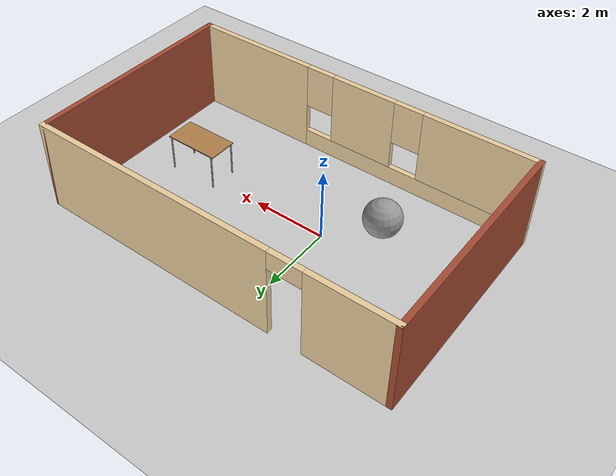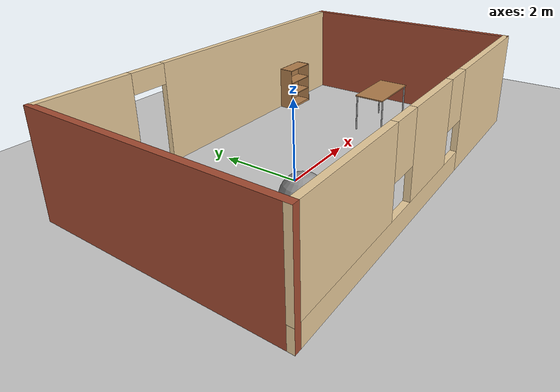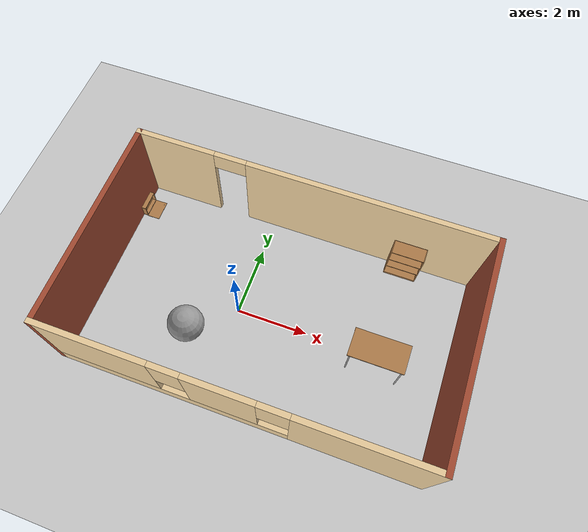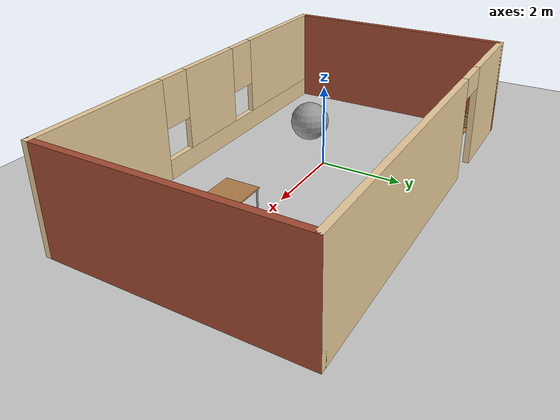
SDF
<sdf version="1.6">
 <world name="default">
  <light name="sun" type="directional">
   <pose>0 0 10 0 -0 0</pose>
   <diffuse>0.8 0.8 0.8 1</diffuse>
   <specular>0.2 0.2 0.2 1</specular>
   <attenuation>
    <range>1000</range>
    <constant>0.9</constant>
    <linear>0.01</linear>
    <quadratic>0.001</quadratic>
   </attenuation>
   <direction>-0.5 0.1 -0.9</direction>
  </light>
  <model name="ground_plane">
   <static>1</static>
   <link name="link">
    <collision name="collision">
     <geometry><plane><normal>0 0 1</normal><size>100 100</size></plane></geometry>
     <surface><friction><ode><mu>100</mu><mu2>50</mu2></ode></friction></surface>
    </collision>
    <visual name="visual">
     <cast_shadows>0</cast_shadows>
     <geometry><plane><normal>0 0 1</normal><size>100 100</size></plane></geometry>
     <material>
      <script><uri>file://media/materials/scripts/gazebo.material</uri><name>Gazebo/Grey</name></script>
     </material>
    </visual>
   </link>
  </model>
  <gravity>0 0 -9.8</gravity>
  <magnetic_field>6e-06 2.3e-05 -4.2e-05</magnetic_field>
  <atmosphere type="adiabatic"/>
  <physics name="default_physics" default="0" type="ode">
   <max_step_size>0.001</max_step_size>
   <real_time_factor>1</real_time_factor>
   <real_time_update_rate>1000</real_time_update_rate>
  </physics>
  <scene><ambient>0.4 0.4 0.4 1</ambient><background>0.7 0.7 0.7 1</background><shadows>1</shadows></scene>
  <spherical_coordinates>
   <surface_model>EARTH_WGS84</surface_model>
   <latitude_deg>0</latitude_deg>
   <longitude_deg>0</longitude_deg>
   <elevation>0</elevation>
   <heading_deg>0</heading_deg>
  </spherical_coordinates>
  <model name="Room">
   <pose>0.988 0.14043 0 0 -0 0</pose>
   <link name="Wall_1">
    <collision name="Wall_1_Collision">
     <geometry><box><size>6 0.15 2.5</size></box></geometry>
     <pose>0 0 1.25 0 -0 0</pose>
    </collision>
    <visual name="Wall_1_Visual">
     <pose>0 0 1.25 0 -0 0</pose>
     <geometry><box><size>6 0.15 2.5</size></box></geometry>
     <material>
      <script><uri>file://media/materials/scripts/gazebo.material</uri><name>Gazebo/Bricks</name></script>
      <ambient>1 1 1 1</ambient>
     </material>
     <meta><layer>0</layer></meta>
    </visual>
    <pose>-4.925 0 0 0 -0 1.5708</pose>
   </link>
   <link name="Wall_2">
    <pose>0 2.925 0 0 -0 0</pose>
    <visual name="Wall_2_Visual_0">
     <pose>-3.86575 0 1.25 0 -0 0</pose>
     <geometry><box><size>2.2685 0.15 2.5</size></box></geometry>
     <material>
      <script><uri>file://media/materials/scripts/gazebo.material</uri><name>Gazebo/Grey</name></script>
      <ambient>0.921569 0.807843 0.615686 1</ambient>
     </material>
     <meta><layer>0</layer></meta>
    </visual>
    <collision name="Wall_2_Collision_0">
     <geometry><box><size>2.2685 0.15 2.5</size></box></geometry>
     <pose>-3.86575 0 1.25 0 -0 0</pose>
    </collision>
    <visual name="Wall_2_Visual_1">
     <pose>1.58425 0 1.25 0 -0 0</pose>
     <geometry><box><size>6.8315 0.15 2.5</size></box></geometry>
     <material>
      <script><uri>file://media/materials/scripts/gazebo.material</uri><name>Gazebo/Grey</name></script>
      <ambient>0.921569 0.807843 0.615686 1</ambient>
     </material>
     <meta><layer>0</layer></meta>
    </visual>
    <collision name="Wall_2_Collision_1">
     <geometry><box><size>6.8315 0.15 2.5</size></box></geometry>
     <pose>1.58425 0 1.25 0 -0 0</pose>
    </collision>
    <visual name="Wall_2_Visual_2">
     <pose>-2.2815 0 2.25 0 -0 0</pose>
     <geometry><box><size>0.9 0.15 0.5</size></box></geometry>
     <material>
      <script><uri>file://media/materials/scripts/gazebo.material</uri><name>Gazebo/Grey</name></script>
      <ambient>0.921569 0.807843 0.615686 1</ambient>
     </material>
     <meta><layer>0</layer></meta>
    </visual>
    <collision name="Wall_2_Collision_2">
     <geometry><box><size>0.9 0.15 0.5</size></box></geometry>
     <pose>-2.2815 0 2.25 0 -0 0</pose>
    </collision>
   </link>
   <link name="Wall_3">
    <collision name="Wall_3_Collision">
     <geometry><box><size>6 0.15 2.5</size></box></geometry>
     <pose>0 0 1.25 0 -0 0</pose>
    </collision>
    <visual name="Wall_3_Visual">
     <pose>0 0 1.25 0 -0 0</pose>
     <geometry><box><size>6 0.15 2.5</size></box></geometry>
     <material>
      <script><uri>file://media/materials/scripts/gazebo.material</uri><name>Gazebo/Bricks</name></script>
      <ambient>1 1 1 1</ambient>
     </material>
     <meta><layer>0</layer></meta>
    </visual>
    <pose>4.925 0 0 0 0 -1.5708</pose>
   </link>
   <link name="Wall_4">
    <pose>0 -2.925 0 0 -0 3.14159</pose>
    <visual name="Wall_4_Visual_0">
     <pose>-3.23825 0 1.25 0 -0 0</pose>
     <geometry><box><size>3.5235 0.15 2.5</size></box></geometry>
     <material>
      <script><uri>file://media/materials/scripts/gazebo.material</uri><name>Gazebo/Grey</name></script>
      <ambient>0.921569 0.807843 0.615686 1</ambient>
     </material>
     <meta><layer>0</layer></meta>
    </visual>
    <collision name="Wall_4_Collision_0">
     <geometry><box><size>3.5235 0.15 2.5</size></box></geometry>
     <pose>-3.23825 0 1.25 0 -0 0</pose>
    </collision>
    <visual name="Wall_4_Visual_1">
     <pose>1.76175 0 0.25 0 -0 0</pose>
     <geometry><box><size>6.4765 0.15 0.5</size></box></geometry>
     <material>
      <script><uri>file://media/materials/scripts/gazebo.material</uri><name>Gazebo/Grey</name></script>
      <ambient>0.921569 0.807843 0.615686 1</ambient>
     </material>
     <meta><layer>0</layer></meta>
    </visual>
    <collision name="Wall_4_Collision_1">
     <geometry><box><size>6.4765 0.15 0.5</size></box></geometry>
     <pose>1.76175 0 0.25 0 -0 0</pose>
    </collision>
    <visual name="Wall_4_Visual_2">
     <pose>0.2345 0 1.5 0 -0 0</pose>
     <geometry><box><size>1.822 0.15 2</size></box></geometry>
     <material>
      <script><uri>file://media/materials/scripts/gazebo.material</uri><name>Gazebo/Grey</name></script>
      <ambient>0.921569 0.807843 0.615686 1</ambient>
     </material>
     <meta><layer>0</layer></meta>
    </visual>
    <collision name="Wall_4_Collision_2">
     <geometry><box><size>1.822 0.15 2</size></box></geometry>
     <pose>0.2345 0 1.5 0 -0 0</pose>
    </collision>
    <visual name="Wall_4_Visual_3">
     <pose>3.47275 0 1.5 0 -0 0</pose>
     <geometry><box><size>3.0545 0.15 2</size></box></geometry>
     <material>
      <script><uri>file://media/materials/scripts/gazebo.material</uri><name>Gazebo/Grey</name></script>
      <ambient>0.921569 0.807843 0.615686 1</ambient>
     </material>
     <meta><layer>0</layer></meta>
    </visual>
    <collision name="Wall_4_Collision_3">
     <geometry><box><size>3.0545 0.15 2</size></box></geometry>
     <pose>3.47275 0 1.5 0 -0 0</pose>
    </collision>
    <visual name="Wall_4_Visual_4">
     <pose>-1.0765 0 1.9 0 -0 0</pose>
     <geometry><box><size>0.8 0.15 1.2</size></box></geometry>
     <material>
      <script><uri>file://media/materials/scripts/gazebo.material</uri><name>Gazebo/Grey</name></script>
      <ambient>0.921569 0.807843 0.615686 1</ambient>
     </material>
     <meta><layer>0</layer></meta>
    </visual>
    <collision name="Wall_4_Collision_4">
     <geometry><box><size>0.8 0.15 1.2</size></box></geometry>
     <pose>-1.0765 0 1.9 0 -0 0</pose>
    </collision>
    <visual name="Wall_4_Visual_5">
     <pose>1.5455 0 1.9 0 -0 0</pose>
     <geometry><box><size>0.8 0.15 1.2</size></box></geometry>
     <material>
      <script><uri>file://media/materials/scripts/gazebo.material</uri><name>Gazebo/Grey</name></script>
      <ambient>0.921569 0.807843 0.615686 1</ambient>
     </material>
     <meta><layer>0</layer></meta>
    </visual>
    <collision name="Wall_4_Collision_5">
     <geometry><box><size>0.8 0.15 1.2</size></box></geometry>
     <pose>1.5455 0 1.9 0 -0 0</pose>
    </collision>
   </link>
   <static>1</static>
  </model>
  <model name="bookshelf">
   <static>1</static>
   <link name="link">
    <inertial><mass>1</mass></inertial>
    <collision name="back">
     <pose>0 0.005 0.6 0 -0 0</pose>
     <geometry><box><size>0.9 0.01 1.2</size></box></geometry>
    </collision>
    <visual name="visual1">
     <pose>0 0.005 0.6 0 -0 0</pose>
     <geometry><box><size>0.9 0.01 1.2</size></box></geometry>
     <material>
      <script><uri>file://media/materials/scripts/gazebo.material</uri><name>Gazebo/Wood</name></script>
     </material>
    </visual>
    <collision name="left_side">
     <pose>0.45 -0.195 0.6 0 -0 0</pose>
     <geometry><box><size>0.02 0.4 1.2</size></box></geometry>
    </collision>
    <visual name="visual2">
     <pose>0.45 -0.195 0.6 0 -0 0</pose>
     <geometry><box><size>0.02 0.4 1.2</size></box></geometry>
     <material>
      <script><uri>file://media/materials/scripts/gazebo.material</uri><name>Gazebo/Wood</name></script>
     </material>
    </visual>
    <collision name="right_side">
     <pose>-0.45 -0.195 0.6 0 -0 0</pose>
     <geometry><box><size>0.02 0.4 1.2</size></box></geometry>
    </collision>
    <visual name="visual3">
     <pose>-0.45 -0.195 0.6 0 -0 0</pose>
     <geometry><box><size>0.02 0.4 1.2</size></box></geometry>
     <material>
      <script><uri>file://media/materials/scripts/gazebo.material</uri><name>Gazebo/Wood</name></script>
     </material>
    </visual>
    <collision name="bottom">
     <pose>0 -0.195 0.03 0 -0 0</pose>
     <geometry><box><size>0.88 0.4 0.06</size></box></geometry>
    </collision>
    <visual name="visual4">
     <pose>0 -0.195 0.03 0 -0 0</pose>
     <geometry><box><size>0.88 0.4 0.06</size></box></geometry>
     <material>
      <script><uri>file://media/materials/scripts/gazebo.material</uri><name>Gazebo/Wood</name></script>
     </material>
    </visual>
    <collision name="top">
     <pose>0 -0.195 1.19 0 -0 0</pose>
     <geometry><box><size>0.88 0.4 0.02</size></box></geometry>
    </collision>
    <visual name="visual5">
     <pose>0 -0.195 1.19 0 -0 0</pose>
     <geometry><box><size>0.88 0.4 0.02</size></box></geometry>
     <material>
      <script><uri>file://media/materials/scripts/gazebo.material</uri><name>Gazebo/Wood</name></script>
     </material>
    </visual>
    <collision name="low_shelf">
     <pose>0 -0.195 0.43 0 -0 0</pose>
     <geometry><box><size>0.88 0.4 0.02</size></box></geometry>
    </collision>
    <visual name="visual6">
     <pose>0 -0.195 0.43 0 -0 0</pose>
     <geometry><box><size>0.88 0.4 0.02</size></box></geometry>
     <material>
      <script><uri>file://media/materials/scripts/gazebo.material</uri><name>Gazebo/Wood</name></script>
     </material>
    </visual>
    <collision name="high_shelf">
     <pose>0 -0.195 0.8 0 -0 0</pose>
     <geometry><box><size>0.88 0.4 0.02</size></box></geometry>
    </collision>
    <visual name="visual7">
     <pose>0 -0.195 0.8 0 -0 0</pose>
     <geometry><box><size>0.88 0.4 0.02</size></box></geometry>
     <material>
      <script><uri>file://media/materials/scripts/gazebo.material</uri><name>Gazebo/Wood</name></script>
     </material>
    </visual>
   </link>
   <pose>3.94037 2.97396 0 0 -0 0</pose>
  </model>
  <model name="table">
   <static>1</static>
   <link name="link">
    <collision name="surface">
     <pose>0 0 1 0 -0 0</pose>
     <geometry><box><size>1.5 0.8 0.03</size></box></geometry>
     <surface><friction><ode><mu>0.6</mu><mu2>0.6</mu2></ode></friction></surface>
    </collision>
    <visual name="visual1">
     <pose>0 0 1 0 -0 0</pose>
     <geometry><box><size>1.5 0.8 0.03</size></box></geometry>
     <material>
      <script><uri>file://media/materials/scripts/gazebo.material</uri><name>Gazebo/Wood</name></script>
     </material>
    </visual>
    <collision name="front_left_leg">
     <pose>0.68 0.38 0.5 0 -0 0</pose>
     <geometry><cylinder><radius>0.02</radius><length>1</length></cylinder></geometry>
    </collision>
    <visual name="front_left_leg">
     <pose>0.68 0.38 0.5 0 -0 0</pose>
     <geometry><cylinder><radius>0.02</radius><length>1</length></cylinder></geometry>
     <material>
      <script><uri>file://media/materials/scripts/gazebo.material</uri><name>Gazebo/Grey</name></script>
     </material>
    </visual>
    <collision name="front_right_leg">
     <pose>0.68 -0.38 0.5 0 -0 0</pose>
     <geometry><cylinder><radius>0.02</radius><length>1</length></cylinder></geometry>
    </collision>
    <visual name="front_right_leg">
     <pose>0.68 -0.38 0.5 0 -0 0</pose>
     <geometry><cylinder><radius>0.02</radius><length>1</length></cylinder></geometry>
     <material>
      <script><uri>file://media/materials/scripts/gazebo.material</uri><name>Gazebo/Grey</name></script>
     </material>
    </visual>
    <collision name="back_right_leg">
     <pose>-0.68 -0.38 0.5 0 -0 0</pose>
     <geometry><cylinder><radius>0.02</radius><length>1</length></cylinder></geometry>
    </collision>
    <visual name="back_right_leg">
     <pose>-0.68 -0.38 0.5 0 -0 0</pose>
     <geometry><cylinder><radius>0.02</radius><length>1</length></cylinder></geometry>
     <material>
      <script><uri>file://media/materials/scripts/gazebo.material</uri><name>Gazebo/Grey</name></script>
     </material>
    </visual>
    <collision name="back_left_leg">
     <pose>-0.68 0.38 0.5 0 -0 0</pose>
     <geometry><cylinder><radius>0.02</radius><length>1</length></cylinder></geometry>
    </collision>
    <visual name="back_left_leg">
     <pose>-0.68 0.38 0.5 0 -0 0</pose>
     <geometry><cylinder><radius>0.02</radius><length>1</length></cylinder></geometry>
     <material>
      <script><uri>file://media/materials/scripts/gazebo.material</uri><name>Gazebo/Grey</name></script>
     </material>
    </visual>
   </link>
   <pose>3.96514 -0.142251 0 0 -0 0</pose>
  </model>
  <model name="wooden_case">
   <link name="base">
    <pose>0 0 0.024 0 -0 0</pose>
    <inertial>
     <pose>-0.022184 0 0.171592 0 -0 0</pose>
     <mass>3.96264</mass>
     <inertia>
      <ixx>0.213536</ixx>
      <ixy>0</ixy>
      <ixz>0.000779377</ixz>
      <iyy>0.0708943</iyy>
      <iyz>0</iyz>
      <izz>0.154604</izz>
     </inertia>
    </inertial>
    <collision name="collision_back">
     <pose>-0.053975 0 0.1778 0 -0 0</pose>
     <geometry><box><size>0.01905 0.5461 0.3175</size></box></geometry>
     <surface>
      <contact>
       <poissons_ratio>0.347</poissons_ratio>
       <elastic_modulus>8.8e+09</elastic_modulus>
       <ode><kp>100000</kp><kd>100</kd><max_vel>100</max_vel><min_depth>0.001</min_depth></ode>
      </contact>
      <friction>
       <torsional>
        <coefficient>1</coefficient>
        <use_patch_radius>0</use_patch_radius>
        <surface_radius>0.01</surface_radius>
       </torsional>
      </friction>
     </surface>
    </collision>
    <visual name="visual_back">
     <pose>-0.053975 0 0.1778 0 -0 0</pose>
     <geometry><box><size>0.01905 0.5461 0.3175</size></box></geometry>
     <material>
      <script><uri>file://media/materials/scripts/gazebo.material</uri><name>Gazebo/Wood</name></script>
     </material>
    </visual>
    <collision name="collision_bottom">
     <pose>0 0 0.009525 0 -0 0</pose>
     <geometry><box><size>0.127 0.5842 0.01905</size></box></geometry>
     <surface>
      <contact>
       <poissons_ratio>0.347</poissons_ratio>
       <elastic_modulus>8.8e+09</elastic_modulus>
       <ode><kp>100000</kp><kd>100</kd><max_vel>100</max_vel><min_depth>0.001</min_depth></ode>
      </contact>
      <friction>
       <torsional>
        <coefficient>1</coefficient>
        <use_patch_radius>0</use_patch_radius>
        <surface_radius>0.01</surface_radius>
       </torsional>
      </friction>
     </surface>
    </collision>
    <visual name="visual_bottom">
     <pose>0 0 0.009525 0 -0 0</pose>
     <geometry><box><size>0.127 0.5842 0.01905</size></box></geometry>
     <material>
      <script><uri>file://media/materials/scripts/gazebo.material</uri><name>Gazebo/Wood</name></script>
     </material>
    </visual>
    <collision name="collision_top">
     <pose>0 0 0.346075 0 -0 0</pose>
     <geometry><box><size>0.127 0.5842 0.01905</size></box></geometry>
     <surface>
      <contact>
       <poissons_ratio>0.347</poissons_ratio>
       <elastic_modulus>8.8e+09</elastic_modulus>
       <ode><kp>100000</kp><kd>100</kd><max_vel>100</max_vel><min_depth>0.001</min_depth></ode>
      </contact>
      <friction>
       <torsional>
        <coefficient>1</coefficient>
        <use_patch_radius>0</use_patch_radius>
        <surface_radius>0.01</surface_radius>
       </torsional>
      </friction>
     </surface>
    </collision>
    <visual name="visual_top">
     <pose>0 0 0.346075 0 -0 0</pose>
     <geometry><box><size>0.127 0.5842 0.01905</size></box></geometry>
     <material>
      <script><uri>file://media/materials/scripts/gazebo.material</uri><name>Gazebo/Wood</name></script>
     </material>
    </visual>
    <collision name="collision_left">
     <pose>0 -0.282575 0.1778 0 -0 0</pose>
     <geometry><box><size>0.127 0.01905 0.3175</size></box></geometry>
     <surface>
      <contact>
       <poissons_ratio>0.347</poissons_ratio>
       <elastic_modulus>8.8e+09</elastic_modulus>
       <ode><kp>100000</kp><kd>100</kd><max_vel>100</max_vel><min_depth>0.001</min_depth></ode>
      </contact>
      <friction>
       <torsional>
        <coefficient>1</coefficient>
        <use_patch_radius>0</use_patch_radius>
        <surface_radius>0.01</surface_radius>
       </torsional>
      </friction>
     </surface>
    </collision>
    <visual name="visual_left">
     <pose>0 -0.282575 0.1778 0 -0 0</pose>
     <geometry><box><size>0.127 0.01905 0.3175</size></box></geometry>
     <material>
      <script><uri>file://media/materials/scripts/gazebo.material</uri><name>Gazebo/Wood</name></script>
     </material>
    </visual>
    <collision name="collision_right">
     <pose>0 0.282575 0.1778 0 -0 0</pose>
     <geometry><box><size>0.127 0.01905 0.3175</size></box></geometry>
     <surface>
      <contact>
       <poissons_ratio>0.347</poissons_ratio>
       <elastic_modulus>8.8e+09</elastic_modulus>
       <ode><kp>100000</kp><kd>100</kd><max_vel>100</max_vel><min_depth>0.001</min_depth></ode>
      </contact>
      <friction>
       <torsional>
        <coefficient>1</coefficient>
        <use_patch_radius>0</use_patch_radius>
        <surface_radius>0.01</surface_radius>
       </torsional>
      </friction>
     </surface>
    </collision>
    <visual name="visual_right">
     <pose>0 0.282575 0.1778 0 -0 0</pose>
     <geometry><box><size>0.127 0.01905 0.3175</size></box></geometry>
     <material>
      <script><uri>file://media/materials/scripts/gazebo.material</uri><name>Gazebo/Wood</name></script>
     </material>
    </visual>
    <collision name="collision_block_left">
     <pose>0.0095 -0.2151 -0.012 0 -0 0</pose>
     <geometry><box><size>0.108 0.05 0.024</size></box></geometry>
     <surface>
      <contact>
       <poissons_ratio>0.347</poissons_ratio>
       <elastic_modulus>8.8e+09</elastic_modulus>
       <ode><kp>100000</kp><kd>100</kd><max_vel>100</max_vel><min_depth>0.001</min_depth></ode>
      </contact>
      <friction>
       <torsional>
        <coefficient>1</coefficient>
        <use_patch_radius>0</use_patch_radius>
        <surface_radius>0.01</surface_radius>
       </torsional>
      </friction>
     </surface>
    </collision>
    <visual name="visual_block_left">
     <pose>0.0095 -0.2151 -0.012 0 -0 0</pose>
     <geometry><box><size>0.108 0.05 0.024</size></box></geometry>
     <material>
      <script><uri>file://media/materials/scripts/gazebo.material</uri><name>Gazebo/Wood</name></script>
     </material>
    </visual>
    <collision name="collision_block_right">
     <pose>0.0095 0.2151 -0.012 0 -0 0</pose>
     <geometry><box><size>0.108 0.05 0.024</size></box></geometry>
     <surface>
      <contact>
       <poissons_ratio>0.347</poissons_ratio>
       <elastic_modulus>8.8e+09</elastic_modulus>
       <ode><kp>100000</kp><kd>100</kd><max_vel>100</max_vel><min_depth>0.001</min_depth></ode>
      </contact>
      <friction>
       <torsional>
        <coefficient>1</coefficient>
        <use_patch_radius>0</use_patch_radius>
        <surface_radius>0.01</surface_radius>
       </torsional>
      </friction>
     </surface>
    </collision>
    <visual name="visual_block_right">
     <pose>0.0095 0.2151 -0.012 0 -0 0</pose>
     <geometry><box><size>0.108 0.05 0.024</size></box></geometry>
     <material>
      <script><uri>file://media/materials/scripts/gazebo.material</uri><name>Gazebo/Wood</name></script>
     </material>
    </visual>
   </link>
   <link name="lid">
    <pose>0.243775 0 0.009525 0 -0 0</pose>
    <inertial>
     <mass>1.97874</mass>
     <inertia>
      <ixx>0.0563367</ixx>
      <ixy>0</ixy>
      <ixz>0</ixz>
      <iyy>0.020911</iyy>
      <iyz>0</iyz>
      <izz>0.0771281</izz>
     </inertia>
    </inertial>
    <collision name="collision">
     <geometry><box><size>0.3556 0.5842 0.01905</size></box></geometry>
     <surface>
      <contact>
       <poissons_ratio>0.347</poissons_ratio>
       <elastic_modulus>8.8e+09</elastic_modulus>
       <ode><kp>100000</kp><kd>100</kd><max_vel>100</max_vel><min_depth>0.001</min_depth></ode>
      </contact>
      <friction>
       <torsional>
        <coefficient>1</coefficient>
        <use_patch_radius>0</use_patch_radius>
        <surface_radius>0.01</surface_radius>
       </torsional>
      </friction>
     </surface>
    </collision>
    <visual name="visual">
     <geometry><box><size>0.3556 0.5842 0.01905</size></box></geometry>
     <material>
      <script><uri>file://media/materials/scripts/gazebo.material</uri><name>Gazebo/Wood</name></script>
     </material>
    </visual>
    <visual name="tee_nut_1">
     <pose>0.122 -0.216 0 0 -0 0</pose>
     <geometry><cylinder><radius>0.00635</radius><length>0.0192405</length></cylinder></geometry>
     <material>
      <script><uri>file://media/materials/scripts/gazebo.material</uri><name>Gazebo/Grey</name></script>
     </material>
    </visual>
    <visual name="tee_nut_2">
     <pose>0.122 -0.088 0 0 -0 0</pose>
     <geometry><cylinder><radius>0.00635</radius><length>0.0192405</length></cylinder></geometry>
     <material>
      <script><uri>file://media/materials/scripts/gazebo.material</uri><name>Gazebo/Grey</name></script>
     </material>
    </visual>
    <visual name="tee_nut_3">
     <pose>0.122 0.088 0 0 -0 0</pose>
     <geometry><cylinder><radius>0.00635</radius><length>0.0192405</length></cylinder></geometry>
     <material>
      <script><uri>file://media/materials/scripts/gazebo.material</uri><name>Gazebo/Grey</name></script>
     </material>
    </visual>
    <visual name="tee_nut_4">
     <pose>0.122 0.216 0 0 -0 0</pose>
     <geometry><cylinder><radius>0.00635</radius><length>0.0192405</length></cylinder></geometry>
     <material>
      <script><uri>file://media/materials/scripts/gazebo.material</uri><name>Gazebo/Grey</name></script>
     </material>
    </visual>
   </link>
   <joint name="lid_hinge" type="revolute">
    <pose>-0.1778 0 0.01905 0 -0 0</pose>
    <parent>base</parent>
    <child>lid</child>
    <axis>
     <xyz>0 1 0</xyz>
     <limit><upper>0.523599</upper><lower>-1.5708</lower></limit>
     <use_parent_model_frame>0</use_parent_model_frame>
     <dynamics><spring_reference>0</spring_reference><spring_stiffness>0</spring_stiffness></dynamics>
    </axis>
   </joint>
   <pose>-3.79139 2.26127 -0.001057 0 -0.000426 0</pose>
  </model>
  <model name="unit_sphere">
   <pose>-1.1003 -0.995049 0.5 0 -0 0</pose>
   <link name="link">
    <inertial>
     <mass>1</mass>
     <inertia><ixx>0.1</ixx><ixy>0</ixy><ixz>0</ixz><iyy>0.1</iyy><iyz>0</iyz><izz>0.1</izz></inertia>
    </inertial>
    <collision name="collision"><geometry><sphere><radius>0.5</radius></sphere></geometry></collision>
    <visual name="visual">
     <geometry><sphere><radius>0.5</radius></sphere></geometry>
     <material>
      <script><name>Gazebo/Grey</name><uri>file://media/materials/scripts/gazebo.material</uri></script>
     </material>
    </visual>
   </link>
  </model>
 </world>
</sdf>
